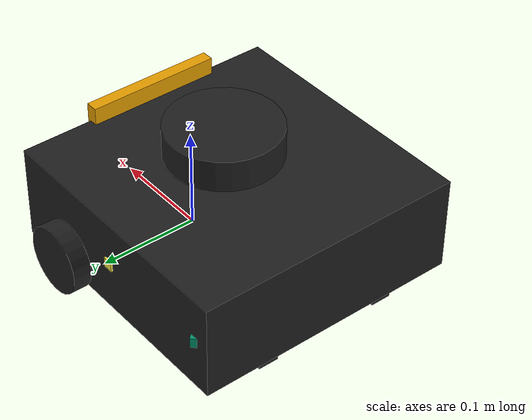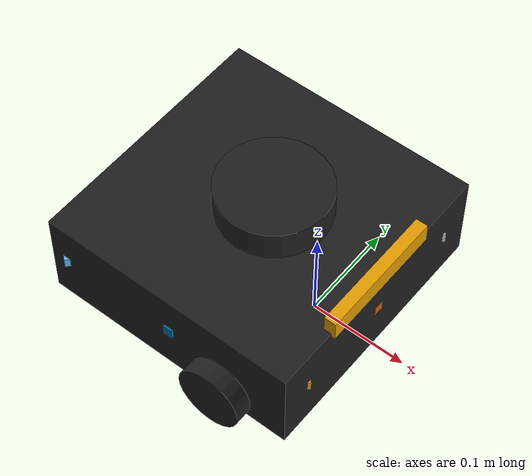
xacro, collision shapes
<?xml version="1.0" ?>
<robot name="turtlebot3_waffle" xmlns:xacro="http://ros.org/wiki/xacro">
  <xacro:include filename="$(find turtlebot3_description)/urdf/common_properties.xacro"/>
  <xacro:include filename="$(find turtlebot3_description)/urdf/turtlebot3_waffle.gazebo.xacro"/>

  <xacro:property name="r200_cam_rgb_px" value="0.005"/>
  <xacro:property name="r200_cam_rgb_py" value="0.018"/>
  <xacro:property name="r200_cam_rgb_pz" value="0.013"/>
  <xacro:property name="r200_cam_depth_offset" value="0.01"/>

  <link name="base_footprint"/>

  <joint name="base_joint" type="fixed">
    <parent link="base_footprint"/>
    <child link="base_link" />
    <origin xyz="0 0 0.010" rpy="0 0 0"/>
  </joint>

  <link name="base_link">
    <visual>
      <origin xyz="-0.064 0 0.0" rpy="0 0 0"/>
      <geometry>
        <mesh filename="package://turtlebot3_description/meshes/bases/waffle_base.stl" scale="0.001 0.001 0.001"/>
      </geometry>
      <material name="light_black"/>
    </visual>

    <collision>
      <origin xyz="-0.064 0 0.047" rpy="0 0 0"/>
      <geometry>
        <box size="0.266 0.266 0.094"/>
      </geometry>
    </collision>

    <inertial>
      <origin xyz="0 0 0" rpy="0 0 0"/>
      <mass value="1.3729096e+00"/>
      <inertia ixx="8.7002718e-03" ixy="-4.7576583e-05" ixz="1.1160499e-04"
               iyy="8.6195418e-03" iyz="-3.5422299e-06"
               izz="1.4612727e-02" />
    </inertial>
  </link>

  <joint name="wheel_left_joint" type="continuous">
    <parent link="base_link"/>
    <child link="wheel_left_link"/>
    <origin xyz="0.0 0.144 0.023" rpy="-1.57 0 0"/>
    <axis xyz="0 0 1"/>
  </joint>

  <link name="wheel_left_link">
    <visual>
      <origin xyz="0 0 0" rpy="1.57 0 0"/>
      <geometry>
        <mesh filename="package://turtlebot3_description/meshes/wheels/left_tire.stl" scale="0.001 0.001 0.001"/>
      </geometry>
      <material name="dark"/>
    </visual>

    <collision>
      <origin xyz="0 0 0" rpy="0 0 0"/>
      <geometry>
        <cylinder length="0.018" radius="0.033"/>
      </geometry>
    </collision>

    <inertial>
      <origin xyz="0 0 0" />
      <mass value="2.8498940e-02" />
      <inertia ixx="1.1175580e-05" ixy="-4.2369783e-11" ixz="-5.9381719e-09"
               iyy="1.1192413e-05" iyz="-1.4400107e-11"
               izz="2.0712558e-05" />
      </inertial>
  </link>

  <joint name="wheel_right_joint" type="continuous">
    <parent link="base_link"/>
    <child link="wheel_right_link"/>
    <origin xyz="0.0 -0.144 0.023" rpy="-1.57 0 0"/>
    <axis xyz="0 0 1"/>
  </joint>

  <link name="wheel_right_link">
    <visual>
      <origin xyz="0 0 0" rpy="1.57 0 0"/>
      <geometry>
        <mesh filename="package://turtlebot3_description/meshes/wheels/right_tire.stl" scale="0.001 0.001 0.001"/>
      </geometry>
      <material name="dark"/>
    </visual>

    <collision>
      <origin xyz="0 0 0" rpy="0 0 0"/>
      <geometry>
        <cylinder length="0.018" radius="0.033"/>
      </geometry>
    </collision>

    <inertial>
      <origin xyz="0 0 0" />
      <mass value="2.8498940e-02" />
      <inertia ixx="1.1175580e-05" ixy="-4.2369783e-11" ixz="-5.9381719e-09"
               iyy="1.1192413e-05" iyz="-1.4400107e-11"
               izz="2.0712558e-05" />
      </inertial>
  </link>

  <joint name="caster_back_right_joint" type="fixed">
    <parent link="base_link"/>
    <child link="caster_back_right_link"/>
    <origin xyz="-0.177 -0.064 -0.004" rpy="-1.57 0 0"/>
  </joint>

  <link name="caster_back_right_link">
    <collision>
      <origin xyz="0 0.001 0" rpy="0 0 0"/>
      <geometry>
        <box size="0.030 0.009 0.020"/>
      </geometry>
    </collision>

    <inertial>
      <origin xyz="0 0 0" />
      <mass value="0.005" />
      <inertia ixx="0.001" ixy="0.0" ixz="0.0"
               iyy="0.001" iyz="0.0"
               izz="0.001" />
    </inertial>
  </link>

  <joint name="caster_back_left_joint" type="fixed">
    <parent link="base_link"/>
    <child link="caster_back_left_link"/>
    <origin xyz="-0.177 0.064 -0.004" rpy="-1.57 0 0"/>
  </joint>

  <link name="caster_back_left_link">
    <collision>
      <origin xyz="0 0.001 0" rpy="0 0 0"/>
      <geometry>
        <box size="0.030 0.009 0.020"/>
      </geometry>
    </collision>

    <inertial>
      <origin xyz="0 0 0" />
      <mass value="0.005" />
      <inertia ixx="0.001" ixy="0.0" ixz="0.0"
               iyy="0.001" iyz="0.0"
               izz="0.001" />
    </inertial>
  </link>

  <joint name="imu_joint" type="fixed">
    <parent link="base_link"/>
    <child link="imu_link"/>
    <origin xyz="0.0 0 0.068" rpy="0 0 0"/>
  </joint>

  <link name="imu_link"/>

  <joint name="scan_joint" type="fixed">
    <parent link="base_link"/>
    <child link="base_scan"/>
    <origin xyz="-0.064 0 0.122" rpy="0 0 0"/>
  </joint>

  <link name="base_scan">
    <visual>
      <origin xyz="0 0 0" rpy="0 0 0"/>
      <geometry>
        <mesh filename="package://turtlebot3_description/meshes/sensors/lds.stl" scale="0.001 0.001 0.001"/>
      </geometry>
      <material name="dark"/>
    </visual>

    <collision>
      <origin xyz="0.015 0 -0.0065" rpy="0 0 0"/>
      <geometry>
        <cylinder length="0.0315" radius="0.055"/>
      </geometry>
    </collision>

    <inertial>
      <mass value="0.114" />
      <origin xyz="0 0 0" />
      <inertia ixx="0.001" ixy="0.0" ixz="0.0"
               iyy="0.001" iyz="0.0"
               izz="0.001" />
    </inertial>
  </link>

  <joint name="camera_joint" type="fixed">
    <origin xyz="0.064 -0.07 0.094" rpy="0 0 0"/>
    <parent link="base_link"/>
    <child link="camera_link"/>
  </joint>

  <link name="camera_link">
    <visual>
     <origin xyz="0 0 0" rpy="1.57 0 1.57"/>
      <geometry>
       <mesh filename="package://turtlebot3_description/meshes/sensors/r200.dae" />
       <scale>0.5 0.5 0.5</scale>
      </geometry>
    </visual>
    <collision>
      <origin xyz="0.003 0.065 0.007" rpy="0 0 0"/>
      <geometry>
        <box size="0.012 0.132 0.020"/>
      </geometry>
    </collision>

    <!-- This inertial field needs doesn't contain reliable data!! -->
  </link>

  <joint name="camera_rgb_joint" type="fixed">
    <origin xyz="${r200_cam_rgb_px} ${r200_cam_rgb_py} ${r200_cam_rgb_pz}" rpy="0 0 0"/>
    <parent link="camera_link"/>
    <child link="camera_rgb_frame"/>
  </joint>
  <link name="camera_rgb_frame"/>

  <joint name="camera_rgb_optical_joint" type="fixed">
    <origin xyz="0 0 0" rpy="-1.57 0 -1.57"/>
    <parent link="camera_rgb_frame"/>
    <child link="camera_rgb_optical_frame"/>
  </joint>
  <link name="camera_rgb_optical_frame"/>

  <joint name="camera_depth_joint" type="fixed">
    <origin xyz="${r200_cam_rgb_px} ${r200_cam_rgb_py + r200_cam_depth_offset} ${r200_cam_rgb_pz}" rpy="0 0 0"/>
    <parent link="camera_link"/>
    <child link="camera_depth_frame"/>
  </joint>
  <link name="camera_depth_frame"/>

  <joint name="camera_depth_optical_joint" type="fixed">
    <origin xyz="0 0 0" rpy="-1.57 0 -1.57"/>
    <parent link="camera_depth_frame"/>
    <child link="camera_depth_optical_frame"/>
  </joint>
  <link name="camera_depth_optical_frame"/>

               <!-- SONAR JOINTS -->

  <joint name="sonar_front_joint" type="fixed">
    <axis xyz="0 1 0" />
    <origin rpy="0 0 0" xyz="0.064 -0.00 0.05" />
    <parent link="base_link"/>
    <child link="sonar_front"/>
  </joint>

  <link name="sonar_front">
    <collision>
      <origin xyz="0 0 0" rpy="0 0 0"/>
      <geometry>
        <box size="0.01 0.01 0.01"/>
      </geometry>
    </collision>
    <visual>
      <origin xyz="0 0 0" rpy="0 0 0"/>
      <geometry>
        <box size="0.02 0.01 0.01"/>
      </geometry>
    </visual>
    <inertial>
      <mass value="1e-5" />
      <origin xyz="0 0 0" rpy="0 0 0"/>
      <inertia ixx="1e-6" ixy="0" ixz="0" iyy="1e-6" iyz="0" izz="1e-6" />
    </inertial>
 </link>

 <joint name="sonar_rear_joint" type="fixed">
    <axis xyz="0 1 0" />
    <origin rpy="0 0 3.14" xyz="-0.19 -0.00 0.05" />
    <parent link="base_link"/>
    <child link="sonar_rear"/>
  </joint>

  <link name="sonar_rear">
    <collision>
      <origin xyz="0 0 0" rpy="0 0 0"/>
      <geometry>
        <box size="0.01 0.01 0.01"/>
      </geometry>
    </collision>
    <visual>
      <origin xyz="0 0 0" rpy="0 0 0"/>
      <geometry>
        <box size="0.02 0.01 0.01"/>
      </geometry>
    </visual>
    <inertial>
      <mass value="1e-5" />
      <origin xyz="0 0 0" rpy="0 0 0"/>
      <inertia ixx="1e-6" ixy="0" ixz="0" iyy="1e-6" iyz="0" izz="1e-6" />
    </inertial>
 </link>

 <joint name="sonar_left_front_joint" type="fixed">
    <axis xyz="0 1 0" />
    <origin rpy="0 0 0.79" xyz="0.064 0.10 0.05" />
    <parent link="base_link"/>
    <child link="sonar_left_front"/>
  </joint>

  <link name="sonar_left_front">
    <collision>
      <origin xyz="0 0 0" rpy="0 0 0"/>
      <geometry>
        <box size="0.01 0.01 0.01"/>
      </geometry>
    </collision>
    <visual>
      <origin xyz="0 0 0" rpy="0 0 0"/>
      <geometry>
        <box size="0.02 0.01 0.01"/>
      </geometry>
    </visual>
    <inertial>
      <mass value="1e-5" />
      <origin xyz="0 0 0" rpy="0 0 0"/>
      <inertia ixx="1e-6" ixy="0" ixz="0" iyy="1e-6" iyz="0" izz="1e-6" />
    </inertial>
 </link>

 <joint name="sonar_right_front_joint" type="fixed">
    <axis xyz="0 1 0" />
    <origin rpy="0 0 -0.79" xyz="0.064 -0.1 0.05" />
    <parent link="base_link"/>
    <child link="sonar_right_front"/>
  </joint>

  <link name="sonar_right_front">
    <collision>
      <origin xyz="0 0 0" rpy="0 0 0"/>
      <geometry>
        <box size="0.01 0.01 0.01"/>
      </geometry>
    </collision>
    <visual>
      <origin xyz="0 0 0" rpy="0 0 0"/>
      <geometry>
        <box size="0.02 0.01 0.01"/>
      </geometry>
    </visual>
    <inertial>
      <mass value="1e-5" />
      <origin xyz="0 0 0" rpy="0 0 0"/>
      <inertia ixx="1e-6" ixy="0" ixz="0" iyy="1e-6" iyz="0" izz="1e-6" />
    </inertial>
 </link>

 <joint name="sonar_left_rear_joint" type="fixed">
    <axis xyz="0 1 0" />
    <origin rpy="0 0 -2.30" xyz="-0.18 -0.13 0.05" />
    <parent link="base_link"/>
    <child link="sonar_left_rear"/>
  </joint>

  <link name="sonar_left_rear">
    <collision>
      <origin xyz="0 0 0" rpy="0 0 0"/>
      <geometry>
        <box size="0.01 0.01 0.01"/>
      </geometry>
    </collision>
    <visual>
      <origin xyz="0 0 0" rpy="0 0 0"/>
      <geometry>
        <box size="0.02 0.01 0.01"/>
      </geometry>
    </visual>
    <inertial>
      <mass value="1e-5" />
      <origin xyz="0 0 0" rpy="0 0 0"/>
      <inertia ixx="1e-6" ixy="0" ixz="0" iyy="1e-6" iyz="0" izz="1e-6" />
    </inertial>
 </link>

 <joint name="sonar_right_rear_joint" type="fixed">
    <axis xyz="0 1 0" />
    <origin rpy="0 0 2.30" xyz="-0.18 0.13 0.05" />
    <parent link="base_link"/>
    <child link="sonar_right_rear"/>
  </joint>

  <link name="sonar_right_rear">
    <collision>
      <origin xyz="0 0 0" rpy="0 0 0"/>
      <geometry>
        <box size="0.01 0.01 0.01"/>
      </geometry>
    </collision>
    <visual>
      <origin xyz="0 0 0" rpy="0 0 0"/>
      <geometry>
        <box size="0.02 0.01 0.01"/>
      </geometry>
    </visual>
    <inertial>
      <mass value="1e-5" />
      <origin xyz="0 0 0" rpy="0 0 0"/>
      <inertia ixx="1e-6" ixy="0" ixz="0" iyy="1e-6" iyz="0" izz="1e-6" />
    </inertial>
 </link>

 <joint name="sonar_right_joint" type="fixed">
    <axis xyz="0 1 0" />
    <origin rpy="0 0 1.57" xyz="-0.06 0.13 0.05" />
    <parent link="base_link"/>
    <child link="sonar_right"/>
  </joint>

  <link name="sonar_right">
    <collision>
      <origin xyz="0 0 0" rpy="0 0 0"/>
      <geometry>
        <box size="0.01 0.01 0.01"/>
      </geometry>
    </collision>
    <visual>
      <origin xyz="0 0 0" rpy="0 0 0"/>
      <geometry>
        <box size="0.02 0.01 0.01"/>
      </geometry>
    </visual>
    <inertial>
      <mass value="1e-5" />
      <origin xyz="0 0 0" rpy="0 0 0"/>
      <inertia ixx="1e-6" ixy="0" ixz="0" iyy="1e-6" iyz="0" izz="1e-6" />
    </inertial>
 </link>

<joint name="sonar_left_joint" type="fixed">
    <axis xyz="0 1 0" />
    <origin rpy="0 0 -1.57" xyz="-0.06 -0.13 0.05" />
    <parent link="base_link"/>
    <child link="sonar_left"/>
  </joint>

  <link name="sonar_left">
    <collision>
      <origin xyz="0 0 0" rpy="0 0 0"/>
      <geometry>
        <box size="0.01 0.01 0.01"/>
      </geometry>
    </collision>
    <visual>
      <origin xyz="0 0 0" rpy="0 0 0"/>
      <geometry>
        <box size="0.02 0.01 0.01"/>
      </geometry>
    </visual>
    <inertial>
      <mass value="1e-5" />
      <origin xyz="0 0 0" rpy="0 0 0"/>
      <inertia ixx="1e-6" ixy="0" ixz="0" iyy="1e-6" iyz="0" izz="1e-6" />
    </inertial>
 </link>

</robot>
